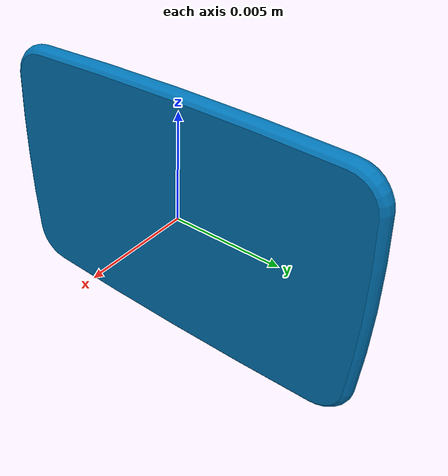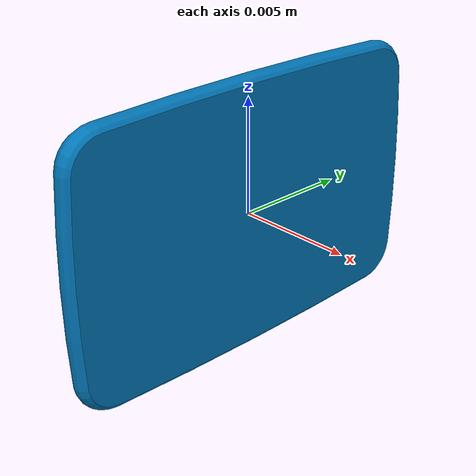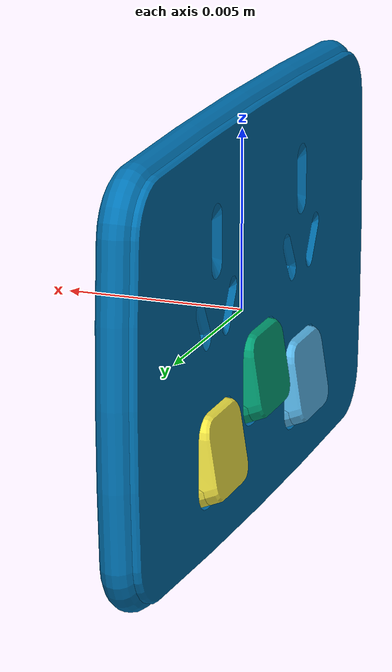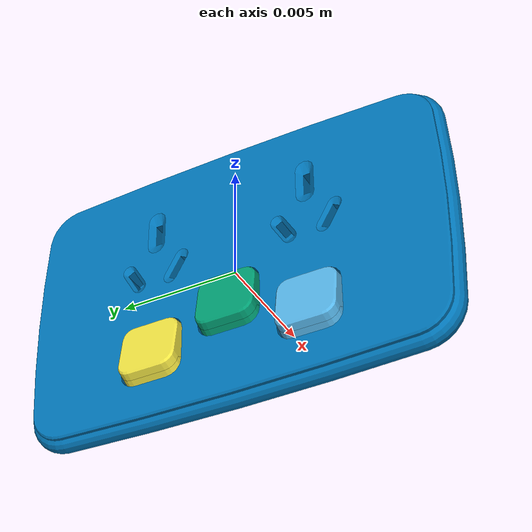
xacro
<robot name="partnet_0babf424-c85b-4d21-8123-72f3aed070c9" xmlns:xacro="http://wiki.ros.org/xacro">
	<xacro:property name="scale" value="100" /><link name="base" />
	<link name="link_0">
		<visual name="switch-1">
			<origin xyz="${-0.45498383794909003 / scale} ${0.2850748272945912 / scale} ${-0.06158125813383397 / scale}" />
			<geometry>
				<mesh filename="package://switch_description/urdf/100846/textured_objs/original-18.obj" scale="${1 / scale} ${1 / scale} ${1 / scale}" />
			</geometry>
		</visual>
		<visual name="switch-1">
			<origin xyz="${-0.45498383794909003 / scale} ${0.2850748272945912 / scale} ${-0.06158125813383397 / scale}" />
			<geometry>
				<mesh filename="package://switch_description/urdf/100846/textured_objs/original-19.obj" scale="${1 / scale} ${1 / scale} ${1 / scale}" />
			</geometry>
		</visual>
		<collision>
			<origin xyz="${-0.45498383794909003 / scale} ${0.2850748272945912 / scale} ${-0.06158125813383397 / scale}" />
			<geometry>
				<mesh filename="package://switch_description/urdf/100846/textured_objs/original-18.obj" scale="${1 / scale} ${1 / scale} ${1 / scale}" />
			</geometry>
		</collision>
		<collision>
			<origin xyz="${-0.45498383794909003 / scale} ${0.2850748272945912 / scale} ${-0.06158125813383397 / scale}" />
			<geometry>
				<mesh filename="package://switch_description/urdf/100846/textured_objs/original-19.obj" scale="${1 / scale} ${1 / scale} ${1 / scale}" />
			</geometry>
		</collision>
	</link>
	<joint name="joint_0" type="revolute">
		<origin xyz="${0.45498383794909003 / scale} ${-0.2850748272945912 / scale} ${0.06158125813383397 / scale}" />
		<axis xyz="1 0 0" />
		<child link="link_0" />
		<parent link="link_3" />
		<limit lower="0.0" upper="0.3392920065876977" effort="10.0" velocity="0.1" />
	</joint>
	<link name="link_1">
		<visual name="switch-2">
			<origin xyz="${-0.45498383794909003 / scale} ${0.16524480782056183 / scale} ${-0.061048941288923575 / scale}" />
			<geometry>
				<mesh filename="package://switch_description/urdf/100846/textured_objs/original-22.obj" scale="${1 / scale} ${1 / scale} ${1 / scale}" />
			</geometry>
		</visual>
		<visual name="switch-2">
			<origin xyz="${-0.45498383794909003 / scale} ${0.16524480782056183 / scale} ${-0.061048941288923575 / scale}" />
			<geometry>
				<mesh filename="package://switch_description/urdf/100846/textured_objs/original-23.obj" scale="${1 / scale} ${1 / scale} ${1 / scale}" />
			</geometry>
		</visual>
		<collision>
			<origin xyz="${-0.45498383794909003 / scale} ${0.16524480782056183 / scale} ${-0.061048941288923575 / scale}" />
			<geometry>
				<mesh filename="package://switch_description/urdf/100846/textured_objs/original-22.obj" scale="${1 / scale} ${1 / scale} ${1 / scale}" />
			</geometry>
		</collision>
		<collision>
			<origin xyz="${-0.45498383794909003 / scale} ${0.16524480782056183 / scale} ${-0.061048941288923575 / scale}" />
			<geometry>
				<mesh filename="package://switch_description/urdf/100846/textured_objs/original-23.obj" scale="${1 / scale} ${1 / scale} ${1 / scale}" />
			</geometry>
		</collision>
	</link>
	<joint name="joint_1" type="revolute">
		<origin xyz="${0.45498383794909003 / scale} ${-0.16524480782056183 / scale} ${0.061048941288923575 / scale}" />
		<axis xyz="1 0 0" />
		<child link="link_1" />
		<parent link="link_3" />
		<limit lower="0.0" upper="0.3392920065876977" effort="10.0" velocity="0.1" />
	</joint>
	<link name="link_2">
		<visual name="switch-3">
			<origin xyz="${-0.45498383794909003 / scale} ${0.28008190981650666 / scale} ${-0.06155907826529604 / scale}" />
			<geometry>
				<mesh filename="package://switch_description/urdf/100846/textured_objs/original-15.obj" scale="${1 / scale} ${1 / scale} ${1 / scale}" />
			</geometry>
		</visual>
		<visual name="switch-3">
			<origin xyz="${-0.45498383794909003 / scale} ${0.28008190981650666 / scale} ${-0.06155907826529604 / scale}" />
			<geometry>
				<mesh filename="package://switch_description/urdf/100846/textured_objs/original-14.obj" scale="${1 / scale} ${1 / scale} ${1 / scale}" />
			</geometry>
		</visual>
		<collision>
			<origin xyz="${-0.45498383794909003 / scale} ${0.28008190981650666 / scale} ${-0.06155907826529604 / scale}" />
			<geometry>
				<mesh filename="package://switch_description/urdf/100846/textured_objs/original-15.obj" scale="${1 / scale} ${1 / scale} ${1 / scale}" />
			</geometry>
		</collision>
		<collision>
			<origin xyz="${-0.45498383794909003 / scale} ${0.28008190981650666 / scale} ${-0.06155907826529604 / scale}" />
			<geometry>
				<mesh filename="package://switch_description/urdf/100846/textured_objs/original-14.obj" scale="${1 / scale} ${1 / scale} ${1 / scale}" />
			</geometry>
		</collision>
	</link>
	<joint name="joint_2" type="revolute">
		<origin xyz="${0.45498383794909003 / scale} ${-0.28008190981650666 / scale} ${0.06155907826529604 / scale}" />
		<axis xyz="1 0 0" />
		<child link="link_2" />
		<parent link="link_3" />
		<limit lower="0.0" upper="0.3392920065876977" effort="10.0" velocity="0.1" />
	</joint>
	<link name="link_3">
		<visual name="base_body-4">
			<origin xyz="${0 / scale} ${0 / scale} ${0 / scale}" />
			<geometry>
				<mesh filename="package://switch_description/urdf/100846/textured_objs/original-4.obj" scale="${1 / scale} ${1 / scale} ${1 / scale}" />
			</geometry>
		</visual>
		<visual name="base_body-4">
			<origin xyz="${0 / scale} ${0 / scale} ${0 / scale}" />
			<geometry>
				<mesh filename="package://switch_description/urdf/100846/textured_objs/original-3.obj" scale="${1 / scale} ${1 / scale} ${1 / scale}" />
			</geometry>
		</visual>
		<visual name="base_body-4">
			<origin xyz="${0 / scale} ${0 / scale} ${0 / scale}" />
			<geometry>
				<mesh filename="package://switch_description/urdf/100846/textured_objs/original-2.obj" scale="${1 / scale} ${1 / scale} ${1 / scale}" />
			</geometry>
		</visual>
		<visual name="base_body-4">
			<origin xyz="${0 / scale} ${0 / scale} ${0 / scale}" />
			<geometry>
				<mesh filename="package://switch_description/urdf/100846/textured_objs/original-16.obj" scale="${1 / scale} ${1 / scale} ${1 / scale}" />
			</geometry>
		</visual>
		<visual name="base_body-4">
			<origin xyz="${0 / scale} ${0 / scale} ${0 / scale}" />
			<geometry>
				<mesh filename="package://switch_description/urdf/100846/textured_objs/original-8.obj" scale="${1 / scale} ${1 / scale} ${1 / scale}" />
			</geometry>
		</visual>
		<visual name="base_body-4">
			<origin xyz="${0 / scale} ${0 / scale} ${0 / scale}" />
			<geometry>
				<mesh filename="package://switch_description/urdf/100846/textured_objs/original-9.obj" scale="${1 / scale} ${1 / scale} ${1 / scale}" />
			</geometry>
		</visual>
		<visual name="base_body-4">
			<origin xyz="${0 / scale} ${0 / scale} ${0 / scale}" />
			<geometry>
				<mesh filename="package://switch_description/urdf/100846/textured_objs/original-5.obj" scale="${1 / scale} ${1 / scale} ${1 / scale}" />
			</geometry>
		</visual>
		<visual name="base_body-4">
			<origin xyz="${0 / scale} ${0 / scale} ${0 / scale}" />
			<geometry>
				<mesh filename="package://switch_description/urdf/100846/textured_objs/original-6.obj" scale="${1 / scale} ${1 / scale} ${1 / scale}" />
			</geometry>
		</visual>
		<visual name="base_body-4">
			<origin xyz="${0 / scale} ${0 / scale} ${0 / scale}" />
			<geometry>
				<mesh filename="package://switch_description/urdf/100846/textured_objs/original-11.obj" scale="${1 / scale} ${1 / scale} ${1 / scale}" />
			</geometry>
		</visual>
		<visual name="base_body-4">
			<origin xyz="${0 / scale} ${0 / scale} ${0 / scale}" />
			<geometry>
				<mesh filename="package://switch_description/urdf/100846/textured_objs/original-12.obj" scale="${1 / scale} ${1 / scale} ${1 / scale}" />
			</geometry>
		</visual>
		<visual name="base_body-4">
			<origin xyz="${0 / scale} ${0 / scale} ${0 / scale}" />
			<geometry>
				<mesh filename="package://switch_description/urdf/100846/textured_objs/original-24.obj" scale="${1 / scale} ${1 / scale} ${1 / scale}" />
			</geometry>
		</visual>
		<visual name="base_body-4">
			<origin xyz="${0 / scale} ${0 / scale} ${0 / scale}" />
			<geometry>
				<mesh filename="package://switch_description/urdf/100846/textured_objs/original-20.obj" scale="${1 / scale} ${1 / scale} ${1 / scale}" />
			</geometry>
		</visual>
		<visual name="base_body-4">
			<origin xyz="${0 / scale} ${0 / scale} ${0 / scale}" />
			<geometry>
				<mesh filename="package://switch_description/urdf/100846/textured_objs/original-7.obj" scale="${1 / scale} ${1 / scale} ${1 / scale}" />
			</geometry>
		</visual>
		<visual name="base_body-4">
			<origin xyz="${0 / scale} ${0 / scale} ${0 / scale}" />
			<geometry>
				<mesh filename="package://switch_description/urdf/100846/textured_objs/original-1.obj" scale="${1 / scale} ${1 / scale} ${1 / scale}" />
			</geometry>
		</visual>
		<visual name="base_body-4">
			<origin xyz="${0 / scale} ${0 / scale} ${0 / scale}" />
			<geometry>
				<mesh filename="package://switch_description/urdf/100846/textured_objs/original-10.obj" scale="${1 / scale} ${1 / scale} ${1 / scale}" />
			</geometry>
		</visual>
		<collision>
			<origin xyz="${0 / scale} ${0 / scale} ${0 / scale}" />
			<geometry>
				<mesh filename="package://switch_description/urdf/100846/textured_objs/original-4.obj" scale="${1 / scale} ${1 / scale} ${1 / scale}" />
			</geometry>
		</collision>
		<collision>
			<origin xyz="${0 / scale} ${0 / scale} ${0 / scale}" />
			<geometry>
				<mesh filename="package://switch_description/urdf/100846/textured_objs/original-3.obj" scale="${1 / scale} ${1 / scale} ${1 / scale}" />
			</geometry>
		</collision>
		<collision>
			<origin xyz="${0 / scale} ${0 / scale} ${0 / scale}" />
			<geometry>
				<mesh filename="package://switch_description/urdf/100846/textured_objs/original-2.obj" scale="${1 / scale} ${1 / scale} ${1 / scale}" />
			</geometry>
		</collision>
		<collision>
			<origin xyz="${0 / scale} ${0 / scale} ${0 / scale}" />
			<geometry>
				<mesh filename="package://switch_description/urdf/100846/textured_objs/original-16.obj" scale="${1 / scale} ${1 / scale} ${1 / scale}" />
			</geometry>
		</collision>
		<collision>
			<origin xyz="${0 / scale} ${0 / scale} ${0 / scale}" />
			<geometry>
				<mesh filename="package://switch_description/urdf/100846/textured_objs/original-8.obj" scale="${1 / scale} ${1 / scale} ${1 / scale}" />
			</geometry>
		</collision>
		<collision>
			<origin xyz="${0 / scale} ${0 / scale} ${0 / scale}" />
			<geometry>
				<mesh filename="package://switch_description/urdf/100846/textured_objs/original-9.obj" scale="${1 / scale} ${1 / scale} ${1 / scale}" />
			</geometry>
		</collision>
		<collision>
			<origin xyz="${0 / scale} ${0 / scale} ${0 / scale}" />
			<geometry>
				<mesh filename="package://switch_description/urdf/100846/textured_objs/original-5.obj" scale="${1 / scale} ${1 / scale} ${1 / scale}" />
			</geometry>
		</collision>
		<collision>
			<origin xyz="${0 / scale} ${0 / scale} ${0 / scale}" />
			<geometry>
				<mesh filename="package://switch_description/urdf/100846/textured_objs/original-6.obj" scale="${1 / scale} ${1 / scale} ${1 / scale}" />
			</geometry>
		</collision>
		<collision>
			<origin xyz="${0 / scale} ${0 / scale} ${0 / scale}" />
			<geometry>
				<mesh filename="package://switch_description/urdf/100846/textured_objs/original-11.obj" scale="${1 / scale} ${1 / scale} ${1 / scale}" />
			</geometry>
		</collision>
		<collision>
			<origin xyz="${0 / scale} ${0 / scale} ${0 / scale}" />
			<geometry>
				<mesh filename="package://switch_description/urdf/100846/textured_objs/original-12.obj" scale="${1 / scale} ${1 / scale} ${1 / scale}" />
			</geometry>
		</collision>
		<collision>
			<origin xyz="${0 / scale} ${0 / scale} ${0 / scale}" />
			<geometry>
				<mesh filename="package://switch_description/urdf/100846/textured_objs/original-24.obj" scale="${1 / scale} ${1 / scale} ${1 / scale}" />
			</geometry>
		</collision>
		<collision>
			<origin xyz="${0 / scale} ${0 / scale} ${0 / scale}" />
			<geometry>
				<mesh filename="package://switch_description/urdf/100846/textured_objs/original-20.obj" scale="${1 / scale} ${1 / scale} ${1 / scale}" />
			</geometry>
		</collision>
		<collision>
			<origin xyz="${0 / scale} ${0 / scale} ${0 / scale}" />
			<geometry>
				<mesh filename="package://switch_description/urdf/100846/textured_objs/original-7.obj" scale="${1 / scale} ${1 / scale} ${1 / scale}" />
			</geometry>
		</collision>
		<collision>
			<origin xyz="${0 / scale} ${0 / scale} ${0 / scale}" />
			<geometry>
				<mesh filename="package://switch_description/urdf/100846/textured_objs/original-1.obj" scale="${1 / scale} ${1 / scale} ${1 / scale}" />
			</geometry>
		</collision>
		<collision>
			<origin xyz="${0 / scale} ${0 / scale} ${0 / scale}" />
			<geometry>
				<mesh filename="package://switch_description/urdf/100846/textured_objs/original-10.obj" scale="${1 / scale} ${1 / scale} ${1 / scale}" />
			</geometry>
		</collision>
	</link>
	<joint name="joint_3" type="fixed">
		<origin rpy="1.570796326794897 0 -1.570796326794897" xyz="${0 / scale} ${0 / scale} ${0 / scale}" />
		<child link="link_3" />
		<parent link="base" />
	</joint>
</robot>
